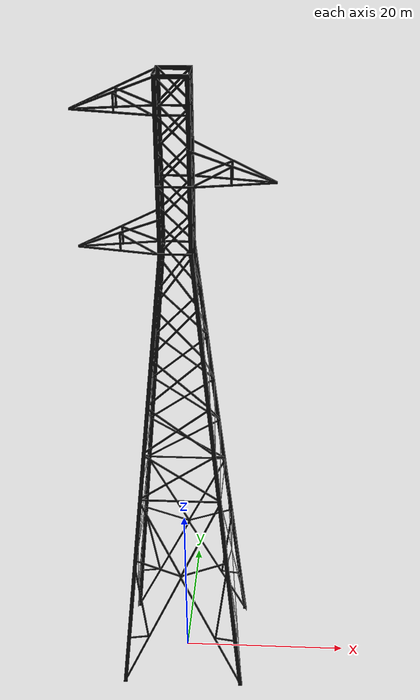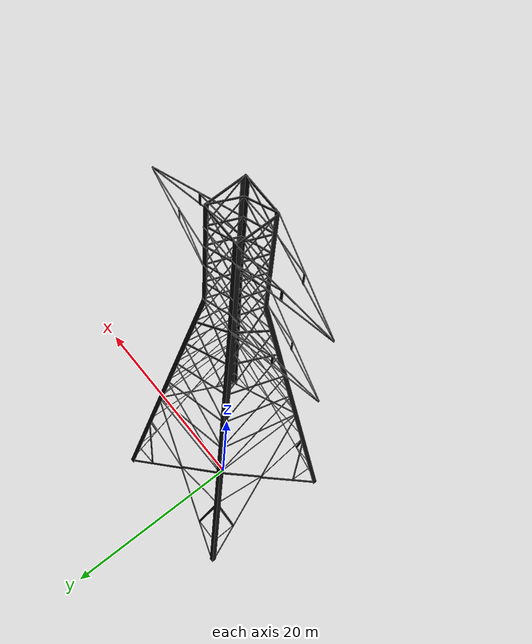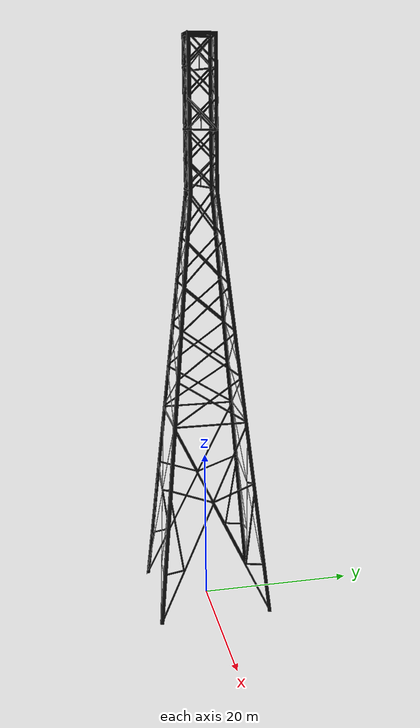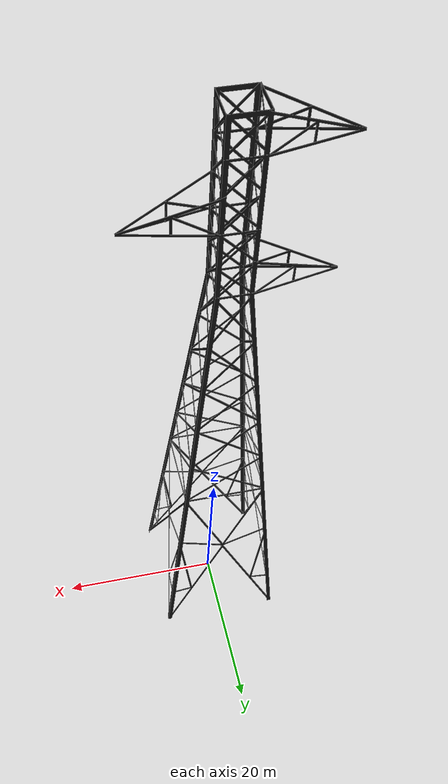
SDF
<?xml version='1.0'?>
<sdf version="1.4">
  <model name="overheadpylon">
    <pose>0 0 0 0 0 0</pose>
    <static>true</static>
    <link name="link">
      <collision name="collision">
        <geometry>
          <mesh>
	  <uri>model://overheadpylon/meshes/overheadpylon.dae</uri>
	  </mesh>
        </geometry>
      </collision>
      <visual name="visual">
        <geometry>
          <mesh>
	  <uri>model://overheadpylon/meshes/overheadpylon.dae</uri>
	  </mesh>
        </geometry>
      </visual>
    </link>
  </model>
</sdf>
